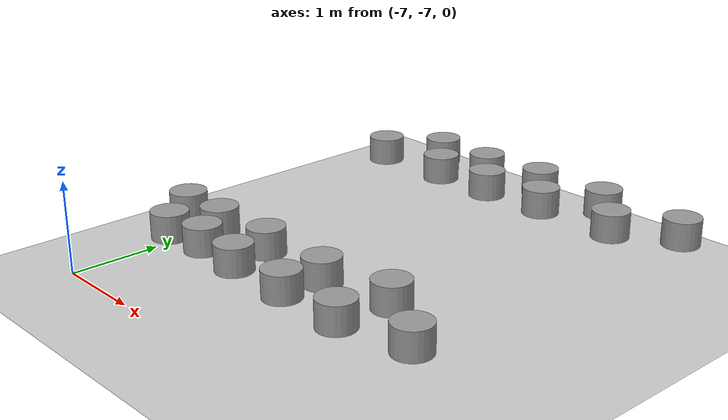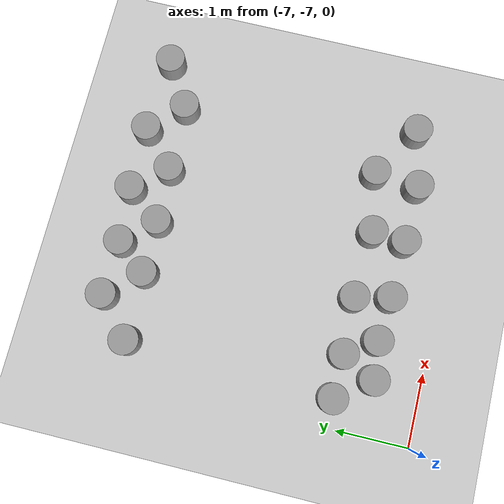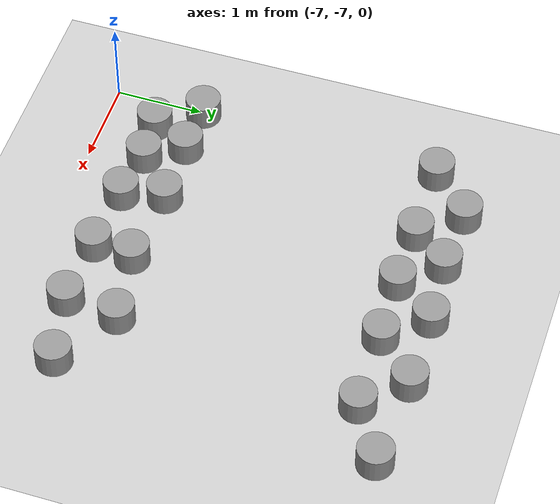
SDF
<sdf version="1.7">
 <world name="default">
  <model name="ground_plane">
   <static>1</static>
   <link name="link">
    <collision name="collision">
     <geometry><plane><normal>0 0 1</normal><size>100 100</size></plane></geometry>
     <surface>
      <contact><collide_bitmask>65535</collide_bitmask></contact>
      <friction><ode><mu>100</mu><mu2>50</mu2></ode></friction>
     </surface>
    </collision>
    <visual name="visual">
     <cast_shadows>0</cast_shadows>
     <geometry><plane><normal>0 0 1</normal><size>100 100</size></plane></geometry>
     <material>
      <script><uri>file://media/materials/scripts/gazebo.material</uri><name>Gazebo/Grey</name></script>
     </material>
    </visual>
   </link>
  </model>
  <model name="Test_pot">
   <link name="link_0">
    <inertial>
     <mass>0.044841</mass>
     <inertia>
      <ixx>0.000748065</ixx>
      <ixy>0</ixy>
      <ixz>0</ixz>
      <iyy>0.000748065</iyy>
      <iyz>0</iyz>
      <izz>0.000864954</izz>
     </inertia>
    </inertial>
    <pose>3e-06 1e-06 0 0 -0 0</pose>
    <visual name="visual">
     <geometry><cylinder><radius>0.196415</radius><length>0.290612</length></cylinder></geometry>
     <material>
      <lighting>1</lighting>
      <script><uri>file://media/materials/scripts/gazebo.material</uri><name>Gazebo/Grey</name></script>
      <shader type="pixel"/>
     </material>
    </visual>
    <collision name="collision">
     <geometry><cylinder><radius>0.196415</radius><length>0.290612</length></cylinder></geometry>
     <surface>
      <friction>
       <ode><mu>1</mu><mu2>1</mu2><fdir1>0 0 0</fdir1><slip1>0</slip1><slip2>0</slip2></ode>
       <torsional>
        <coefficient>1</coefficient>
        <patch_radius>0</patch_radius>
        <surface_radius>0</surface_radius>
        <use_patch_radius>1</use_patch_radius>
        <ode><slip>0</slip></ode>
       </torsional>
      </friction>
      <bounce><restitution_coefficient>0</restitution_coefficient><threshold>1e+06</threshold></bounce>
      <contact>
       <collide_without_contact>0</collide_without_contact>
       <collide_without_contact_bitmask>1</collide_without_contact_bitmask>
       <collide_bitmask>1</collide_bitmask>
       <ode>
        <soft_cfm>0</soft_cfm>
        <soft_erp>0.2</soft_erp>
        <kp>1e+13</kp>
        <kd>1</kd>
        <max_vel>0.01</max_vel>
        <min_depth>0</min_depth>
       </ode>
       <bullet>
        <split_impulse>1</split_impulse>
        <split_impulse_penetration_threshold>-0.01</split_impulse_penetration_threshold>
        <soft_cfm>0</soft_cfm>
        <soft_erp>0.2</soft_erp>
        <kp>1e+13</kp>
        <kd>1</kd>
       </bullet>
      </contact>
     </surface>
    </collision>
   </link>
   <static>0</static>
   <pose>-6.50438 -3.08268 0.575595 -2.2e-05 -1e-05 -0.000529</pose>
  </model>
  <model name="Test_pot_clone">
   <link name="link_0">
    <inertial>
     <mass>0.044841</mass>
     <inertia>
      <ixx>0.000748065</ixx>
      <ixy>0</ixy>
      <ixz>0</ixz>
      <iyy>0.000748065</iyy>
      <iyz>0</iyz>
      <izz>0.000864954</izz>
     </inertia>
    </inertial>
    <pose>3e-06 1e-06 0 0 -0 0</pose>
    <visual name="visual">
     <geometry><cylinder><radius>0.196415</radius><length>0.290612</length></cylinder></geometry>
     <material>
      <lighting>1</lighting>
      <script><uri>file://media/materials/scripts/gazebo.material</uri><name>Gazebo/Grey</name></script>
      <shader type="pixel"/>
     </material>
    </visual>
    <collision name="collision">
     <geometry><cylinder><radius>0.196415</radius><length>0.290612</length></cylinder></geometry>
     <surface>
      <friction>
       <ode><mu>1</mu><mu2>1</mu2><fdir1>0 0 0</fdir1><slip1>0</slip1><slip2>0</slip2></ode>
       <torsional>
        <coefficient>1</coefficient>
        <patch_radius>0</patch_radius>
        <surface_radius>0</surface_radius>
        <use_patch_radius>1</use_patch_radius>
        <ode><slip>0</slip></ode>
       </torsional>
      </friction>
      <bounce><restitution_coefficient>0</restitution_coefficient><threshold>1e+06</threshold></bounce>
      <contact>
       <collide_without_contact>0</collide_without_contact>
       <collide_without_contact_bitmask>1</collide_without_contact_bitmask>
       <collide_bitmask>1</collide_bitmask>
       <ode>
        <soft_cfm>0</soft_cfm>
        <soft_erp>0.2</soft_erp>
        <kp>1e+13</kp>
        <kd>1</kd>
        <max_vel>0.01</max_vel>
        <min_depth>0</min_depth>
       </ode>
       <bullet>
        <split_impulse>1</split_impulse>
        <split_impulse_penetration_threshold>-0.01</split_impulse_penetration_threshold>
        <soft_cfm>0</soft_cfm>
        <soft_erp>0.2</soft_erp>
        <kp>1e+13</kp>
        <kd>1</kd>
       </bullet>
      </contact>
     </surface>
    </collision>
   </link>
   <static>0</static>
   <pose>-6.00654 -2.63855 0.57558 2e-06 3e-06 -0.000579</pose>
  </model>
  <model name="Test_pot_clone_0">
   <link name="link_0">
    <inertial>
     <mass>0.044841</mass>
     <inertia>
      <ixx>0.000748065</ixx>
      <ixy>0</ixy>
      <ixz>0</ixz>
      <iyy>0.000748065</iyy>
      <iyz>0</iyz>
      <izz>0.000864954</izz>
     </inertia>
    </inertial>
    <pose>3e-06 1e-06 0 0 -0 0</pose>
    <visual name="visual">
     <geometry><cylinder><radius>0.196415</radius><length>0.290612</length></cylinder></geometry>
     <material>
      <lighting>1</lighting>
      <script><uri>file://media/materials/scripts/gazebo.material</uri><name>Gazebo/Grey</name></script>
      <shader type="pixel"/>
     </material>
    </visual>
    <collision name="collision">
     <geometry><cylinder><radius>0.196415</radius><length>0.290612</length></cylinder></geometry>
     <surface>
      <friction>
       <ode><mu>1</mu><mu2>1</mu2><fdir1>0 0 0</fdir1><slip1>0</slip1><slip2>0</slip2></ode>
       <torsional>
        <coefficient>1</coefficient>
        <patch_radius>0</patch_radius>
        <surface_radius>0</surface_radius>
        <use_patch_radius>1</use_patch_radius>
        <ode><slip>0</slip></ode>
       </torsional>
      </friction>
      <bounce><restitution_coefficient>0</restitution_coefficient><threshold>1e+06</threshold></bounce>
      <contact>
       <collide_without_contact>0</collide_without_contact>
       <collide_without_contact_bitmask>1</collide_without_contact_bitmask>
       <collide_bitmask>1</collide_bitmask>
       <ode>
        <soft_cfm>0</soft_cfm>
        <soft_erp>0.2</soft_erp>
        <kp>1e+13</kp>
        <kd>1</kd>
        <max_vel>0.01</max_vel>
        <min_depth>0</min_depth>
       </ode>
       <bullet>
        <split_impulse>1</split_impulse>
        <split_impulse_penetration_threshold>-0.01</split_impulse_penetration_threshold>
        <soft_cfm>0</soft_cfm>
        <soft_erp>0.2</soft_erp>
        <kp>1e+13</kp>
        <kd>1</kd>
       </bullet>
      </contact>
     </surface>
    </collision>
   </link>
   <static>0</static>
   <pose>-5.61248 -3.07277 0.575587 -1e-06 -3e-06 -0.000655</pose>
  </model>
  <model name="Test_pot_clone_1">
   <link name="link_0">
    <inertial>
     <mass>0.044841</mass>
     <inertia>
      <ixx>0.000748065</ixx>
      <ixy>0</ixy>
      <ixz>0</ixz>
      <iyy>0.000748065</iyy>
      <iyz>0</iyz>
      <izz>0.000864954</izz>
     </inertia>
    </inertial>
    <pose>3e-06 1e-06 0 0 -0 0</pose>
    <visual name="visual">
     <geometry><cylinder><radius>0.196415</radius><length>0.290612</length></cylinder></geometry>
     <material>
      <lighting>1</lighting>
      <script><uri>file://media/materials/scripts/gazebo.material</uri><name>Gazebo/Grey</name></script>
      <shader type="pixel"/>
     </material>
    </visual>
    <collision name="collision">
     <geometry><cylinder><radius>0.196415</radius><length>0.290612</length></cylinder></geometry>
     <surface>
      <friction>
       <ode><mu>1</mu><mu2>1</mu2><fdir1>0 0 0</fdir1><slip1>0</slip1><slip2>0</slip2></ode>
       <torsional>
        <coefficient>1</coefficient>
        <patch_radius>0</patch_radius>
        <surface_radius>0</surface_radius>
        <use_patch_radius>1</use_patch_radius>
        <ode><slip>0</slip></ode>
       </torsional>
      </friction>
      <bounce><restitution_coefficient>0</restitution_coefficient><threshold>1e+06</threshold></bounce>
      <contact>
       <collide_without_contact>0</collide_without_contact>
       <collide_without_contact_bitmask>1</collide_without_contact_bitmask>
       <collide_bitmask>1</collide_bitmask>
       <ode>
        <soft_cfm>0</soft_cfm>
        <soft_erp>0.2</soft_erp>
        <kp>1e+13</kp>
        <kd>1</kd>
        <max_vel>0.01</max_vel>
        <min_depth>0</min_depth>
       </ode>
       <bullet>
        <split_impulse>1</split_impulse>
        <split_impulse_penetration_threshold>-0.01</split_impulse_penetration_threshold>
        <soft_cfm>0</soft_cfm>
        <soft_erp>0.2</soft_erp>
        <kp>1e+13</kp>
        <kd>1</kd>
       </bullet>
      </contact>
     </surface>
    </collision>
   </link>
   <static>0</static>
   <pose>-5.28132 -2.67032 0.575583 -1.8e-05 -0 -0.000617</pose>
  </model>
  <model name="Test_pot_clone_2">
   <link name="link_0">
    <inertial>
     <mass>0.044841</mass>
     <inertia>
      <ixx>0.000748065</ixx>
      <ixy>0</ixy>
      <ixz>0</ixz>
      <iyy>0.000748065</iyy>
      <iyz>0</iyz>
      <izz>0.000864954</izz>
     </inertia>
    </inertial>
    <pose>3e-06 1e-06 0 0 -0 0</pose>
    <visual name="visual">
     <geometry><cylinder><radius>0.196415</radius><length>0.290612</length></cylinder></geometry>
     <material>
      <lighting>1</lighting>
      <script><uri>file://media/materials/scripts/gazebo.material</uri><name>Gazebo/Grey</name></script>
      <shader type="pixel"/>
     </material>
    </visual>
    <collision name="collision">
     <geometry><cylinder><radius>0.196415</radius><length>0.290612</length></cylinder></geometry>
     <surface>
      <friction>
       <ode><mu>1</mu><mu2>1</mu2><fdir1>0 0 0</fdir1><slip1>0</slip1><slip2>0</slip2></ode>
       <torsional>
        <coefficient>1</coefficient>
        <patch_radius>0</patch_radius>
        <surface_radius>0</surface_radius>
        <use_patch_radius>1</use_patch_radius>
        <ode><slip>0</slip></ode>
       </torsional>
      </friction>
      <bounce><restitution_coefficient>0</restitution_coefficient><threshold>1e+06</threshold></bounce>
      <contact>
       <collide_without_contact>0</collide_without_contact>
       <collide_without_contact_bitmask>1</collide_without_contact_bitmask>
       <collide_bitmask>1</collide_bitmask>
       <ode>
        <soft_cfm>0</soft_cfm>
        <soft_erp>0.2</soft_erp>
        <kp>1e+13</kp>
        <kd>1</kd>
        <max_vel>0.01</max_vel>
        <min_depth>0</min_depth>
       </ode>
       <bullet>
        <split_impulse>1</split_impulse>
        <split_impulse_penetration_threshold>-0.01</split_impulse_penetration_threshold>
        <soft_cfm>0</soft_cfm>
        <soft_erp>0.2</soft_erp>
        <kp>1e+13</kp>
        <kd>1</kd>
       </bullet>
      </contact>
     </surface>
    </collision>
   </link>
   <static>0</static>
   <pose>-4.90848 -3.07316 0.575591 1.6e-05 -1.3e-05 -0.000533</pose>
  </model>
  <model name="Test_pot_clone_3">
   <link name="link_0">
    <inertial>
     <mass>0.044841</mass>
     <inertia>
      <ixx>0.000748065</ixx>
      <ixy>0</ixy>
      <ixz>0</ixz>
      <iyy>0.000748065</iyy>
      <iyz>0</iyz>
      <izz>0.000864954</izz>
     </inertia>
    </inertial>
    <pose>3e-06 1e-06 0 0 -0 0</pose>
    <visual name="visual">
     <geometry><cylinder><radius>0.196415</radius><length>0.290612</length></cylinder></geometry>
     <material>
      <lighting>1</lighting>
      <script><uri>file://media/materials/scripts/gazebo.material</uri><name>Gazebo/Grey</name></script>
      <shader type="pixel"/>
     </material>
    </visual>
    <collision name="collision">
     <geometry><cylinder><radius>0.196415</radius><length>0.290612</length></cylinder></geometry>
     <surface>
      <friction>
       <ode><mu>1</mu><mu2>1</mu2><fdir1>0 0 0</fdir1><slip1>0</slip1><slip2>0</slip2></ode>
       <torsional>
        <coefficient>1</coefficient>
        <patch_radius>0</patch_radius>
        <surface_radius>0</surface_radius>
        <use_patch_radius>1</use_patch_radius>
        <ode><slip>0</slip></ode>
       </torsional>
      </friction>
      <bounce><restitution_coefficient>0</restitution_coefficient><threshold>1e+06</threshold></bounce>
      <contact>
       <collide_without_contact>0</collide_without_contact>
       <collide_without_contact_bitmask>1</collide_without_contact_bitmask>
       <collide_bitmask>1</collide_bitmask>
       <ode>
        <soft_cfm>0</soft_cfm>
        <soft_erp>0.2</soft_erp>
        <kp>1e+13</kp>
        <kd>1</kd>
        <max_vel>0.01</max_vel>
        <min_depth>0</min_depth>
       </ode>
       <bullet>
        <split_impulse>1</split_impulse>
        <split_impulse_penetration_threshold>-0.01</split_impulse_penetration_threshold>
        <soft_cfm>0</soft_cfm>
        <soft_erp>0.2</soft_erp>
        <kp>1e+13</kp>
        <kd>1</kd>
       </bullet>
      </contact>
     </surface>
    </collision>
   </link>
   <static>0</static>
   <pose>-4.54601 -2.61106 0.57558 -4e-06 -4e-06 -0.000541</pose>
  </model>
  <model name="Test_pot_clone_4">
   <link name="link_0">
    <inertial>
     <mass>0.044841</mass>
     <inertia>
      <ixx>0.000748065</ixx>
      <ixy>0</ixy>
      <ixz>0</ixz>
      <iyy>0.000748065</iyy>
      <iyz>0</iyz>
      <izz>0.000864954</izz>
     </inertia>
    </inertial>
    <pose>3e-06 1e-06 0 0 -0 0</pose>
    <visual name="visual">
     <geometry><cylinder><radius>0.196415</radius><length>0.290612</length></cylinder></geometry>
     <material>
      <lighting>1</lighting>
      <script><uri>file://media/materials/scripts/gazebo.material</uri><name>Gazebo/Grey</name></script>
      <shader type="pixel"/>
     </material>
    </visual>
    <collision name="collision">
     <geometry><cylinder><radius>0.196415</radius><length>0.290612</length></cylinder></geometry>
     <surface>
      <friction>
       <ode><mu>1</mu><mu2>1</mu2><fdir1>0 0 0</fdir1><slip1>0</slip1><slip2>0</slip2></ode>
       <torsional>
        <coefficient>1</coefficient>
        <patch_radius>0</patch_radius>
        <surface_radius>0</surface_radius>
        <use_patch_radius>1</use_patch_radius>
        <ode><slip>0</slip></ode>
       </torsional>
      </friction>
      <bounce><restitution_coefficient>0</restitution_coefficient><threshold>1e+06</threshold></bounce>
      <contact>
       <collide_without_contact>0</collide_without_contact>
       <collide_without_contact_bitmask>1</collide_without_contact_bitmask>
       <collide_bitmask>1</collide_bitmask>
       <ode>
        <soft_cfm>0</soft_cfm>
        <soft_erp>0.2</soft_erp>
        <kp>1e+13</kp>
        <kd>1</kd>
        <max_vel>0.01</max_vel>
        <min_depth>0</min_depth>
       </ode>
       <bullet>
        <split_impulse>1</split_impulse>
        <split_impulse_penetration_threshold>-0.01</split_impulse_penetration_threshold>
        <soft_cfm>0</soft_cfm>
        <soft_erp>0.2</soft_erp>
        <kp>1e+13</kp>
        <kd>1</kd>
       </bullet>
      </contact>
     </surface>
    </collision>
   </link>
   <static>0</static>
   <pose>-4.17136 -3.04137 0.575587 -4e-06 8e-06 -0.000548</pose>
  </model>
  <model name="Test_pot_clone_5">
   <link name="link_0">
    <inertial>
     <mass>0.044841</mass>
     <inertia>
      <ixx>0.000748065</ixx>
      <ixy>0</ixy>
      <ixz>0</ixz>
      <iyy>0.000748065</iyy>
      <iyz>0</iyz>
      <izz>0.000864954</izz>
     </inertia>
    </inertial>
    <pose>3e-06 1e-06 0 0 -0 0</pose>
    <visual name="visual">
     <geometry><cylinder><radius>0.196415</radius><length>0.290612</length></cylinder></geometry>
     <material>
      <lighting>1</lighting>
      <script><uri>file://media/materials/scripts/gazebo.material</uri><name>Gazebo/Grey</name></script>
      <shader type="pixel"/>
     </material>
    </visual>
    <collision name="collision">
     <geometry><cylinder><radius>0.196415</radius><length>0.290612</length></cylinder></geometry>
     <surface>
      <friction>
       <ode><mu>1</mu><mu2>1</mu2><fdir1>0 0 0</fdir1><slip1>0</slip1><slip2>0</slip2></ode>
       <torsional>
        <coefficient>1</coefficient>
        <patch_radius>0</patch_radius>
        <surface_radius>0</surface_radius>
        <use_patch_radius>1</use_patch_radius>
        <ode><slip>0</slip></ode>
       </torsional>
      </friction>
      <bounce><restitution_coefficient>0</restitution_coefficient><threshold>1e+06</threshold></bounce>
      <contact>
       <collide_without_contact>0</collide_without_contact>
       <collide_without_contact_bitmask>1</collide_without_contact_bitmask>
       <collide_bitmask>1</collide_bitmask>
       <ode>
        <soft_cfm>0</soft_cfm>
        <soft_erp>0.2</soft_erp>
        <kp>1e+13</kp>
        <kd>1</kd>
        <max_vel>0.01</max_vel>
        <min_depth>0</min_depth>
       </ode>
       <bullet>
        <split_impulse>1</split_impulse>
        <split_impulse_penetration_threshold>-0.01</split_impulse_penetration_threshold>
        <soft_cfm>0</soft_cfm>
        <soft_erp>0.2</soft_erp>
        <kp>1e+13</kp>
        <kd>1</kd>
       </bullet>
      </contact>
     </surface>
    </collision>
   </link>
   <static>0</static>
   <pose>-3.6948 -2.59942 0.575584 1.5e-05 7e-06 -0.000418</pose>
  </model>
  <model name="Test_pot_clone_6">
   <link name="link_0">
    <inertial>
     <mass>0.044841</mass>
     <inertia>
      <ixx>0.000748065</ixx>
      <ixy>0</ixy>
      <ixz>0</ixz>
      <iyy>0.000748065</iyy>
      <iyz>0</iyz>
      <izz>0.000864954</izz>
     </inertia>
    </inertial>
    <pose>3e-06 1e-06 0 0 -0 0</pose>
    <visual name="visual">
     <geometry><cylinder><radius>0.196415</radius><length>0.290612</length></cylinder></geometry>
     <material>
      <lighting>1</lighting>
      <script><uri>file://media/materials/scripts/gazebo.material</uri><name>Gazebo/Grey</name></script>
      <shader type="pixel"/>
     </material>
    </visual>
    <collision name="collision">
     <geometry><cylinder><radius>0.196415</radius><length>0.290612</length></cylinder></geometry>
     <surface>
      <friction>
       <ode><mu>1</mu><mu2>1</mu2><fdir1>0 0 0</fdir1><slip1>0</slip1><slip2>0</slip2></ode>
       <torsional>
        <coefficient>1</coefficient>
        <patch_radius>0</patch_radius>
        <surface_radius>0</surface_radius>
        <use_patch_radius>1</use_patch_radius>
        <ode><slip>0</slip></ode>
       </torsional>
      </friction>
      <bounce><restitution_coefficient>0</restitution_coefficient><threshold>1e+06</threshold></bounce>
      <contact>
       <collide_without_contact>0</collide_without_contact>
       <collide_without_contact_bitmask>1</collide_without_contact_bitmask>
       <collide_bitmask>1</collide_bitmask>
       <ode>
        <soft_cfm>0</soft_cfm>
        <soft_erp>0.2</soft_erp>
        <kp>1e+13</kp>
        <kd>1</kd>
        <max_vel>0.01</max_vel>
        <min_depth>0</min_depth>
       </ode>
       <bullet>
        <split_impulse>1</split_impulse>
        <split_impulse_penetration_threshold>-0.01</split_impulse_penetration_threshold>
        <soft_cfm>0</soft_cfm>
        <soft_erp>0.2</soft_erp>
        <kp>1e+13</kp>
        <kd>1</kd>
       </bullet>
      </contact>
     </surface>
    </collision>
   </link>
   <static>0</static>
   <pose>-3.27506 -3.02162 0.57559 1e-05 -1e-06 -0.000254</pose>
  </model>
  <model name="Test_pot_clone_7">
   <link name="link_0">
    <inertial>
     <mass>0.044841</mass>
     <inertia>
      <ixx>0.000748065</ixx>
      <ixy>0</ixy>
      <ixz>0</ixz>
      <iyy>0.000748065</iyy>
      <iyz>0</iyz>
      <izz>0.000864954</izz>
     </inertia>
    </inertial>
    <pose>3e-06 1e-06 0 0 -0 0</pose>
    <visual name="visual">
     <geometry><cylinder><radius>0.196415</radius><length>0.290612</length></cylinder></geometry>
     <material>
      <lighting>1</lighting>
      <script><uri>file://media/materials/scripts/gazebo.material</uri><name>Gazebo/Grey</name></script>
      <shader type="pixel"/>
     </material>
    </visual>
    <collision name="collision">
     <geometry><cylinder><radius>0.196415</radius><length>0.290612</length></cylinder></geometry>
     <surface>
      <friction>
       <ode><mu>1</mu><mu2>1</mu2><fdir1>0 0 0</fdir1><slip1>0</slip1><slip2>0</slip2></ode>
       <torsional>
        <coefficient>1</coefficient>
        <patch_radius>0</patch_radius>
        <surface_radius>0</surface_radius>
        <use_patch_radius>1</use_patch_radius>
        <ode><slip>0</slip></ode>
       </torsional>
      </friction>
      <bounce><restitution_coefficient>0</restitution_coefficient><threshold>1e+06</threshold></bounce>
      <contact>
       <collide_without_contact>0</collide_without_contact>
       <collide_without_contact_bitmask>1</collide_without_contact_bitmask>
       <collide_bitmask>1</collide_bitmask>
       <ode>
        <soft_cfm>0</soft_cfm>
        <soft_erp>0.2</soft_erp>
        <kp>1e+13</kp>
        <kd>1</kd>
        <max_vel>0.01</max_vel>
        <min_depth>0</min_depth>
       </ode>
       <bullet>
        <split_impulse>1</split_impulse>
        <split_impulse_penetration_threshold>-0.01</split_impulse_penetration_threshold>
        <soft_cfm>0</soft_cfm>
        <soft_erp>0.2</soft_erp>
        <kp>1e+13</kp>
        <kd>1</kd>
       </bullet>
      </contact>
     </surface>
    </collision>
   </link>
   <static>0</static>
   <pose>-2.67651 -2.66455 0.575579 -1.4e-05 2e-06 -0.000386</pose>
  </model>
  <model name="Test_pot_clone_23">
   <link name="link_0">
    <inertial>
     <mass>0.044841</mass>
     <inertia>
      <ixx>0.000748065</ixx>
      <ixy>0</ixy>
      <ixz>0</ixz>
      <iyy>0.000748065</iyy>
      <iyz>0</iyz>
      <izz>0.000864954</izz>
     </inertia>
    </inertial>
    <pose>3e-06 1e-06 0 0 -0 0</pose>
    <visual name="visual">
     <geometry><cylinder><radius>0.196415</radius><length>0.290612</length></cylinder></geometry>
     <material>
      <lighting>1</lighting>
      <script><uri>file://media/materials/scripts/gazebo.material</uri><name>Gazebo/Grey</name></script>
      <shader type="pixel"/>
     </material>
    </visual>
    <collision name="collision">
     <geometry><cylinder><radius>0.196415</radius><length>0.290612</length></cylinder></geometry>
     <surface>
      <friction>
       <ode><mu>1</mu><mu2>1</mu2><fdir1>0 0 0</fdir1><slip1>0</slip1><slip2>0</slip2></ode>
       <torsional>
        <coefficient>1</coefficient>
        <patch_radius>0</patch_radius>
        <surface_radius>0</surface_radius>
        <use_patch_radius>1</use_patch_radius>
        <ode><slip>0</slip></ode>
       </torsional>
      </friction>
      <bounce><restitution_coefficient>0</restitution_coefficient><threshold>1e+06</threshold></bounce>
      <contact>
       <collide_without_contact>0</collide_without_contact>
       <collide_without_contact_bitmask>1</collide_without_contact_bitmask>
       <collide_bitmask>1</collide_bitmask>
       <ode>
        <soft_cfm>0</soft_cfm>
        <soft_erp>0.2</soft_erp>
        <kp>1e+13</kp>
        <kd>1</kd>
        <max_vel>0.01</max_vel>
        <min_depth>0</min_depth>
       </ode>
       <bullet>
        <split_impulse>1</split_impulse>
        <split_impulse_penetration_threshold>-0.01</split_impulse_penetration_threshold>
        <soft_cfm>0</soft_cfm>
        <soft_erp>0.2</soft_erp>
        <kp>1e+13</kp>
        <kd>1</kd>
       </bullet>
      </contact>
     </surface>
    </collision>
   </link>
   <static>0</static>
   <pose>-6.59232 -5.81276 0.575589 3.8e-05 -4e-06 -0.000582</pose>
  </model>
  <model name="Test_pot_clone_24">
   <link name="link_0">
    <inertial>
     <mass>0.044841</mass>
     <inertia>
      <ixx>0.000748065</ixx>
      <ixy>0</ixy>
      <ixz>0</ixz>
      <iyy>0.000748065</iyy>
      <iyz>0</iyz>
      <izz>0.000864954</izz>
     </inertia>
    </inertial>
    <pose>3e-06 1e-06 0 0 -0 0</pose>
    <visual name="visual">
     <geometry><cylinder><radius>0.196415</radius><length>0.290612</length></cylinder></geometry>
     <material>
      <lighting>1</lighting>
      <script><uri>file://media/materials/scripts/gazebo.material</uri><name>Gazebo/Grey</name></script>
      <shader type="pixel"/>
     </material>
    </visual>
    <collision name="collision">
     <geometry><cylinder><radius>0.196415</radius><length>0.290612</length></cylinder></geometry>
     <surface>
      <friction>
       <ode><mu>1</mu><mu2>1</mu2><fdir1>0 0 0</fdir1><slip1>0</slip1><slip2>0</slip2></ode>
       <torsional>
        <coefficient>1</coefficient>
        <patch_radius>0</patch_radius>
        <surface_radius>0</surface_radius>
        <use_patch_radius>1</use_patch_radius>
        <ode><slip>0</slip></ode>
       </torsional>
      </friction>
      <bounce><restitution_coefficient>0</restitution_coefficient><threshold>1e+06</threshold></bounce>
      <contact>
       <collide_without_contact>0</collide_without_contact>
       <collide_without_contact_bitmask>1</collide_without_contact_bitmask>
       <collide_bitmask>1</collide_bitmask>
       <ode>
        <soft_cfm>0</soft_cfm>
        <soft_erp>0.2</soft_erp>
        <kp>1e+13</kp>
        <kd>1</kd>
        <max_vel>0.01</max_vel>
        <min_depth>0</min_depth>
       </ode>
       <bullet>
        <split_impulse>1</split_impulse>
        <split_impulse_penetration_threshold>-0.01</split_impulse_penetration_threshold>
        <soft_cfm>0</soft_cfm>
        <soft_erp>0.2</soft_erp>
        <kp>1e+13</kp>
        <kd>1</kd>
       </bullet>
      </contact>
     </surface>
    </collision>
   </link>
   <static>0</static>
   <pose>-6.25313 -6.26816 0.575589 -3e-06 1.9e-05 -0.000696</pose>
  </model>
  <model name="Test_pot_clone_25">
   <link name="link_0">
    <inertial>
     <mass>0.044841</mass>
     <inertia>
      <ixx>0.000748065</ixx>
      <ixy>0</ixy>
      <ixz>0</ixz>
      <iyy>0.000748065</iyy>
      <iyz>0</iyz>
      <izz>0.000864954</izz>
     </inertia>
    </inertial>
    <pose>3e-06 1e-06 0 0 -0 0</pose>
    <visual name="visual">
     <geometry><cylinder><radius>0.196415</radius><length>0.290612</length></cylinder></geometry>
     <material>
      <lighting>1</lighting>
      <script><uri>file://media/materials/scripts/gazebo.material</uri><name>Gazebo/Grey</name></script>
      <shader type="pixel"/>
     </material>
    </visual>
    <collision name="collision">
     <geometry><cylinder><radius>0.196415</radius><length>0.290612</length></cylinder></geometry>
     <surface>
      <friction>
       <ode><mu>1</mu><mu2>1</mu2><fdir1>0 0 0</fdir1><slip1>0</slip1><slip2>0</slip2></ode>
       <torsional>
        <coefficient>1</coefficient>
        <patch_radius>0</patch_radius>
        <surface_radius>0</surface_radius>
        <use_patch_radius>1</use_patch_radius>
        <ode><slip>0</slip></ode>
       </torsional>
      </friction>
      <bounce><restitution_coefficient>0</restitution_coefficient><threshold>1e+06</threshold></bounce>
      <contact>
       <collide_without_contact>0</collide_without_contact>
       <collide_without_contact_bitmask>1</collide_without_contact_bitmask>
       <collide_bitmask>1</collide_bitmask>
       <ode>
        <soft_cfm>0</soft_cfm>
        <soft_erp>0.2</soft_erp>
        <kp>1e+13</kp>
        <kd>1</kd>
        <max_vel>0.01</max_vel>
        <min_depth>0</min_depth>
       </ode>
       <bullet>
        <split_impulse>1</split_impulse>
        <split_impulse_penetration_threshold>-0.01</split_impulse_penetration_threshold>
        <soft_cfm>0</soft_cfm>
        <soft_erp>0.2</soft_erp>
        <kp>1e+13</kp>
        <kd>1</kd>
       </bullet>
      </contact>
     </surface>
    </collision>
   </link>
   <static>0</static>
   <pose>-6.02138 -5.8268 0.575582 3e-06 -1e-06 -0.000408</pose>
  </model>
  <model name="Test_pot_clone_26">
   <link name="link_0">
    <inertial>
     <mass>0.044841</mass>
     <inertia>
      <ixx>0.000748065</ixx>
      <ixy>0</ixy>
      <ixz>0</ixz>
      <iyy>0.000748065</iyy>
      <iyz>0</iyz>
      <izz>0.000864954</izz>
     </inertia>
    </inertial>
    <pose>3e-06 1e-06 0 0 -0 0</pose>
    <visual name="visual">
     <geometry><cylinder><radius>0.196415</radius><length>0.290612</length></cylinder></geometry>
     <material>
      <lighting>1</lighting>
      <script><uri>file://media/materials/scripts/gazebo.material</uri><name>Gazebo/Grey</name></script>
      <shader type="pixel"/>
     </material>
    </visual>
    <collision name="collision">
     <geometry><cylinder><radius>0.196415</radius><length>0.290612</length></cylinder></geometry>
     <surface>
      <friction>
       <ode><mu>1</mu><mu2>1</mu2><fdir1>0 0 0</fdir1><slip1>0</slip1><slip2>0</slip2></ode>
       <torsional>
        <coefficient>1</coefficient>
        <patch_radius>0</patch_radius>
        <surface_radius>0</surface_radius>
        <use_patch_radius>1</use_patch_radius>
        <ode><slip>0</slip></ode>
       </torsional>
      </friction>
      <bounce><restitution_coefficient>0</restitution_coefficient><threshold>1e+06</threshold></bounce>
      <contact>
       <collide_without_contact>0</collide_without_contact>
       <collide_without_contact_bitmask>1</collide_without_contact_bitmask>
       <collide_bitmask>1</collide_bitmask>
       <ode>
        <soft_cfm>0</soft_cfm>
        <soft_erp>0.2</soft_erp>
        <kp>1e+13</kp>
        <kd>1</kd>
        <max_vel>0.01</max_vel>
        <min_depth>0</min_depth>
       </ode>
       <bullet>
        <split_impulse>1</split_impulse>
        <split_impulse_penetration_threshold>-0.01</split_impulse_penetration_threshold>
        <soft_cfm>0</soft_cfm>
        <soft_erp>0.2</soft_erp>
        <kp>1e+13</kp>
        <kd>1</kd>
       </bullet>
      </contact>
     </surface>
    </collision>
   </link>
   <static>0</static>
   <pose>-5.75904 -6.21798 0.575589 1e-06 -1.8e-05 -0.000685</pose>
  </model>
  <model name="Test_pot_clone_27">
   <link name="link_0">
    <inertial>
     <mass>0.044841</mass>
     <inertia>
      <ixx>0.000748065</ixx>
      <ixy>0</ixy>
      <ixz>0</ixz>
      <iyy>0.000748065</iyy>
      <iyz>0</iyz>
      <izz>0.000864954</izz>
     </inertia>
    </inertial>
    <pose>3e-06 1e-06 0 0 -0 0</pose>
    <visual name="visual">
     <geometry><cylinder><radius>0.196415</radius><length>0.290612</length></cylinder></geometry>
     <material>
      <lighting>1</lighting>
      <script><uri>file://media/materials/scripts/gazebo.material</uri><name>Gazebo/Grey</name></script>
      <shader type="pixel"/>
     </material>
    </visual>
    <collision name="collision">
     <geometry><cylinder><radius>0.196415</radius><length>0.290612</length></cylinder></geometry>
     <surface>
      <friction>
       <ode><mu>1</mu><mu2>1</mu2><fdir1>0 0 0</fdir1><slip1>0</slip1><slip2>0</slip2></ode>
       <torsional>
        <coefficient>1</coefficient>
        <patch_radius>0</patch_radius>
        <surface_radius>0</surface_radius>
        <use_patch_radius>1</use_patch_radius>
        <ode><slip>0</slip></ode>
       </torsional>
      </friction>
      <bounce><restitution_coefficient>0</restitution_coefficient><threshold>1e+06</threshold></bounce>
      <contact>
       <collide_without_contact>0</collide_without_contact>
       <collide_without_contact_bitmask>1</collide_without_contact_bitmask>
       <collide_bitmask>1</collide_bitmask>
       <ode>
        <soft_cfm>0</soft_cfm>
        <soft_erp>0.2</soft_erp>
        <kp>1e+13</kp>
        <kd>1</kd>
        <max_vel>0.01</max_vel>
        <min_depth>0</min_depth>
       </ode>
       <bullet>
        <split_impulse>1</split_impulse>
        <split_impulse_penetration_threshold>-0.01</split_impulse_penetration_threshold>
        <soft_cfm>0</soft_cfm>
        <soft_erp>0.2</soft_erp>
        <kp>1e+13</kp>
        <kd>1</kd>
       </bullet>
      </contact>
     </surface>
    </collision>
   </link>
   <static>0</static>
   <pose>-5.28027 -5.80737 0.575582 2e-06 0 -0.000425</pose>
  </model>
  <model name="Test_pot_clone_28">
   <link name="link_0">
    <inertial>
     <mass>0.044841</mass>
     <inertia>
      <ixx>0.000748065</ixx>
      <ixy>0</ixy>
      <ixz>0</ixz>
      <iyy>0.000748065</iyy>
      <iyz>0</iyz>
      <izz>0.000864954</izz>
     </inertia>
    </inertial>
    <pose>3e-06 1e-06 0 0 -0 0</pose>
    <visual name="visual">
     <geometry><cylinder><radius>0.196415</radius><length>0.290612</length></cylinder></geometry>
     <material>
      <lighting>1</lighting>
      <script><uri>file://media/materials/scripts/gazebo.material</uri><name>Gazebo/Grey</name></script>
      <shader type="pixel"/>
     </material>
    </visual>
    <collision name="collision">
     <geometry><cylinder><radius>0.196415</radius><length>0.290612</length></cylinder></geometry>
     <surface>
      <friction>
       <ode><mu>1</mu><mu2>1</mu2><fdir1>0 0 0</fdir1><slip1>0</slip1><slip2>0</slip2></ode>
       <torsional>
        <coefficient>1</coefficient>
        <patch_radius>0</patch_radius>
        <surface_radius>0</surface_radius>
        <use_patch_radius>1</use_patch_radius>
        <ode><slip>0</slip></ode>
       </torsional>
      </friction>
      <bounce><restitution_coefficient>0</restitution_coefficient><threshold>1e+06</threshold></bounce>
      <contact>
       <collide_without_contact>0</collide_without_contact>
       <collide_without_contact_bitmask>1</collide_without_contact_bitmask>
       <collide_bitmask>1</collide_bitmask>
       <ode>
        <soft_cfm>0</soft_cfm>
        <soft_erp>0.2</soft_erp>
        <kp>1e+13</kp>
        <kd>1</kd>
        <max_vel>0.01</max_vel>
        <min_depth>0</min_depth>
       </ode>
       <bullet>
        <split_impulse>1</split_impulse>
        <split_impulse_penetration_threshold>-0.01</split_impulse_penetration_threshold>
        <soft_cfm>0</soft_cfm>
        <soft_erp>0.2</soft_erp>
        <kp>1e+13</kp>
        <kd>1</kd>
       </bullet>
      </contact>
     </surface>
    </collision>
   </link>
   <static>0</static>
   <pose>-5.17509 -6.27137 0.57559 -2.6e-05 -2.3e-05 -0.000373</pose>
  </model>
  <model name="Test_pot_clone_29">
   <link name="link_0">
    <inertial>
     <mass>0.044841</mass>
     <inertia>
      <ixx>0.000748065</ixx>
      <ixy>0</ixy>
      <ixz>0</ixz>
      <iyy>0.000748065</iyy>
      <iyz>0</iyz>
      <izz>0.000864954</izz>
     </inertia>
    </inertial>
    <pose>3e-06 1e-06 0 0 -0 0</pose>
    <visual name="visual">
     <geometry><cylinder><radius>0.196415</radius><length>0.290612</length></cylinder></geometry>
     <material>
      <lighting>1</lighting>
      <script><uri>file://media/materials/scripts/gazebo.material</uri><name>Gazebo/Grey</name></script>
      <shader type="pixel"/>
     </material>
    </visual>
    <collision name="collision">
     <geometry><cylinder><radius>0.196415</radius><length>0.290612</length></cylinder></geometry>
     <surface>
      <friction>
       <ode><mu>1</mu><mu2>1</mu2><fdir1>0 0 0</fdir1><slip1>0</slip1><slip2>0</slip2></ode>
       <torsional>
        <coefficient>1</coefficient>
        <patch_radius>0</patch_radius>
        <surface_radius>0</surface_radius>
        <use_patch_radius>1</use_patch_radius>
        <ode><slip>0</slip></ode>
       </torsional>
      </friction>
      <bounce><restitution_coefficient>0</restitution_coefficient><threshold>1e+06</threshold></bounce>
      <contact>
       <collide_without_contact>0</collide_without_contact>
       <collide_without_contact_bitmask>1</collide_without_contact_bitmask>
       <collide_bitmask>1</collide_bitmask>
       <ode>
        <soft_cfm>0</soft_cfm>
        <soft_erp>0.2</soft_erp>
        <kp>1e+13</kp>
        <kd>1</kd>
        <max_vel>0.01</max_vel>
        <min_depth>0</min_depth>
       </ode>
       <bullet>
        <split_impulse>1</split_impulse>
        <split_impulse_penetration_threshold>-0.01</split_impulse_penetration_threshold>
        <soft_cfm>0</soft_cfm>
        <soft_erp>0.2</soft_erp>
        <kp>1e+13</kp>
        <kd>1</kd>
       </bullet>
      </contact>
     </surface>
    </collision>
   </link>
   <static>0</static>
   <pose>-4.38166 -5.85931 0.575582 2.8e-05 -1e-05 -0.000219</pose>
  </model>
  <model name="Test_pot_clone_30">
   <link name="link_0">
    <inertial>
     <mass>0.044841</mass>
     <inertia>
      <ixx>0.000748065</ixx>
      <ixy>0</ixy>
      <ixz>0</ixz>
      <iyy>0.000748065</iyy>
      <iyz>0</iyz>
      <izz>0.000864954</izz>
     </inertia>
    </inertial>
    <pose>3e-06 1e-06 0 0 -0 0</pose>
    <visual name="visual">
     <geometry><cylinder><radius>0.196415</radius><length>0.290612</length></cylinder></geometry>
     <material>
      <lighting>1</lighting>
      <script><uri>file://media/materials/scripts/gazebo.material</uri><name>Gazebo/Grey</name></script>
      <shader type="pixel"/>
     </material>
    </visual>
    <collision name="collision">
     <geometry><cylinder><radius>0.196415</radius><length>0.290612</length></cylinder></geometry>
     <surface>
      <friction>
       <ode><mu>1</mu><mu2>1</mu2><fdir1>0 0 0</fdir1><slip1>0</slip1><slip2>0</slip2></ode>
       <torsional>
        <coefficient>1</coefficient>
        <patch_radius>0</patch_radius>
        <surface_radius>0</surface_radius>
        <use_patch_radius>1</use_patch_radius>
        <ode><slip>0</slip></ode>
       </torsional>
      </friction>
      <bounce><restitution_coefficient>0</restitution_coefficient><threshold>1e+06</threshold></bounce>
      <contact>
       <collide_without_contact>0</collide_without_contact>
       <collide_without_contact_bitmask>1</collide_without_contact_bitmask>
       <collide_bitmask>1</collide_bitmask>
       <ode>
        <soft_cfm>0</soft_cfm>
        <soft_erp>0.2</soft_erp>
        <kp>1e+13</kp>
        <kd>1</kd>
        <max_vel>0.01</max_vel>
        <min_depth>0</min_depth>
       </ode>
       <bullet>
        <split_impulse>1</split_impulse>
        <split_impulse_penetration_threshold>-0.01</split_impulse_penetration_threshold>
        <soft_cfm>0</soft_cfm>
        <soft_erp>0.2</soft_erp>
        <kp>1e+13</kp>
        <kd>1</kd>
       </bullet>
      </contact>
     </surface>
    </collision>
   </link>
   <static>0</static>
   <pose>-4.41155 -6.30293 0.575596 3.2e-05 -3.1e-05 -0.000288</pose>
  </model>
  <model name="Test_pot_clone_31">
   <link name="link_0">
    <inertial>
     <mass>0.044841</mass>
     <inertia>
      <ixx>0.000748065</ixx>
      <ixy>0</ixy>
      <ixz>0</ixz>
      <iyy>0.000748065</iyy>
      <iyz>0</iyz>
      <izz>0.000864954</izz>
     </inertia>
    </inertial>
    <pose>3e-06 1e-06 0 0 -0 0</pose>
    <visual name="visual">
     <geometry><cylinder><radius>0.196415</radius><length>0.290612</length></cylinder></geometry>
     <material>
      <lighting>1</lighting>
      <script><uri>file://media/materials/scripts/gazebo.material</uri><name>Gazebo/Grey</name></script>
      <shader type="pixel"/>
     </material>
    </visual>
    <collision name="collision">
     <geometry><cylinder><radius>0.196415</radius><length>0.290612</length></cylinder></geometry>
     <surface>
      <friction>
       <ode><mu>1</mu><mu2>1</mu2><fdir1>0 0 0</fdir1><slip1>0</slip1><slip2>0</slip2></ode>
       <torsional>
        <coefficient>1</coefficient>
        <patch_radius>0</patch_radius>
        <surface_radius>0</surface_radius>
        <use_patch_radius>1</use_patch_radius>
        <ode><slip>0</slip></ode>
       </torsional>
      </friction>
      <bounce><restitution_coefficient>0</restitution_coefficient><threshold>1e+06</threshold></bounce>
      <contact>
       <collide_without_contact>0</collide_without_contact>
       <collide_without_contact_bitmask>1</collide_without_contact_bitmask>
       <collide_bitmask>1</collide_bitmask>
       <ode>
        <soft_cfm>0</soft_cfm>
        <soft_erp>0.2</soft_erp>
        <kp>1e+13</kp>
        <kd>1</kd>
        <max_vel>0.01</max_vel>
        <min_depth>0</min_depth>
       </ode>
       <bullet>
        <split_impulse>1</split_impulse>
        <split_impulse_penetration_threshold>-0.01</split_impulse_penetration_threshold>
        <soft_cfm>0</soft_cfm>
        <soft_erp>0.2</soft_erp>
        <kp>1e+13</kp>
        <kd>1</kd>
       </bullet>
      </contact>
     </surface>
    </collision>
   </link>
   <static>0</static>
   <pose>-3.57872 -5.73364 0.57558 -2e-06 6e-06 -0.000358</pose>
  </model>
  <model name="Test_pot_clone_32">
   <link name="link_0">
    <inertial>
     <mass>0.044841</mass>
     <inertia>
      <ixx>0.000748065</ixx>
      <ixy>0</ixy>
      <ixz>0</ixz>
      <iyy>0.000748065</iyy>
      <iyz>0</iyz>
      <izz>0.000864954</izz>
     </inertia>
    </inertial>
    <pose>3e-06 1e-06 0 0 -0 0</pose>
    <visual name="visual">
     <geometry><cylinder><radius>0.196415</radius><length>0.290612</length></cylinder></geometry>
     <material>
      <lighting>1</lighting>
      <script><uri>file://media/materials/scripts/gazebo.material</uri><name>Gazebo/Grey</name></script>
      <shader type="pixel"/>
     </material>
    </visual>
    <collision name="collision">
     <geometry><cylinder><radius>0.196415</radius><length>0.290612</length></cylinder></geometry>
     <surface>
      <friction>
       <ode><mu>1</mu><mu2>1</mu2><fdir1>0 0 0</fdir1><slip1>0</slip1><slip2>0</slip2></ode>
       <torsional>
        <coefficient>1</coefficient>
        <patch_radius>0</patch_radius>
        <surface_radius>0</surface_radius>
        <use_patch_radius>1</use_patch_radius>
        <ode><slip>0</slip></ode>
       </torsional>
      </friction>
      <bounce><restitution_coefficient>0</restitution_coefficient><threshold>1e+06</threshold></bounce>
      <contact>
       <collide_without_contact>0</collide_without_contact>
       <collide_without_contact_bitmask>1</collide_without_contact_bitmask>
       <collide_bitmask>1</collide_bitmask>
       <ode>
        <soft_cfm>0</soft_cfm>
        <soft_erp>0.2</soft_erp>
        <kp>1e+13</kp>
        <kd>1</kd>
        <max_vel>0.01</max_vel>
        <min_depth>0</min_depth>
       </ode>
       <bullet>
        <split_impulse>1</split_impulse>
        <split_impulse_penetration_threshold>-0.01</split_impulse_penetration_threshold>
        <soft_cfm>0</soft_cfm>
        <soft_erp>0.2</soft_erp>
        <kp>1e+13</kp>
        <kd>1</kd>
       </bullet>
      </contact>
     </surface>
    </collision>
   </link>
   <static>0</static>
   <pose>-2.87393 -6.16159 0.575586 -3e-06 3e-06 -0.000549</pose>
  </model>
  <model name="Test_pot_clone_33">
   <link name="link_0">
    <inertial>
     <mass>0.044841</mass>
     <inertia>
      <ixx>0.000748065</ixx>
      <ixy>0</ixy>
      <ixz>0</ixz>
      <iyy>0.000748065</iyy>
      <iyz>0</iyz>
      <izz>0.000864954</izz>
     </inertia>
    </inertial>
    <pose>3e-06 1e-06 0 0 -0 0</pose>
    <visual name="visual">
     <geometry><cylinder><radius>0.196415</radius><length>0.290612</length></cylinder></geometry>
     <material>
      <lighting>1</lighting>
      <script><uri>file://media/materials/scripts/gazebo.material</uri><name>Gazebo/Grey</name></script>
      <shader type="pixel"/>
     </material>
    </visual>
    <collision name="collision">
     <geometry><cylinder><radius>0.196415</radius><length>0.290612</length></cylinder></geometry>
     <surface>
      <friction>
       <ode><mu>1</mu><mu2>1</mu2><fdir1>0 0 0</fdir1><slip1>0</slip1><slip2>0</slip2></ode>
       <torsional>
        <coefficient>1</coefficient>
        <patch_radius>0</patch_radius>
        <surface_radius>0</surface_radius>
        <use_patch_radius>1</use_patch_radius>
        <ode><slip>0</slip></ode>
       </torsional>
      </friction>
      <bounce><restitution_coefficient>0</restitution_coefficient><threshold>1e+06</threshold></bounce>
      <contact>
       <collide_without_contact>0</collide_without_contact>
       <collide_without_contact_bitmask>1</collide_without_contact_bitmask>
       <collide_bitmask>1</collide_bitmask>
       <ode>
        <soft_cfm>0</soft_cfm>
        <soft_erp>0.2</soft_erp>
        <kp>1e+13</kp>
        <kd>1</kd>
        <max_vel>0.01</max_vel>
        <min_depth>0</min_depth>
       </ode>
       <bullet>
        <split_impulse>1</split_impulse>
        <split_impulse_penetration_threshold>-0.01</split_impulse_penetration_threshold>
        <soft_cfm>0</soft_cfm>
        <soft_erp>0.2</soft_erp>
        <kp>1e+13</kp>
        <kd>1</kd>
       </bullet>
      </contact>
     </surface>
    </collision>
   </link>
   <static>0</static>
   <pose>-3.63704 -6.32367 0.575587 -2.2e-05 -1e-06 -0.000717</pose>
  </model>
 </world>
</sdf>
